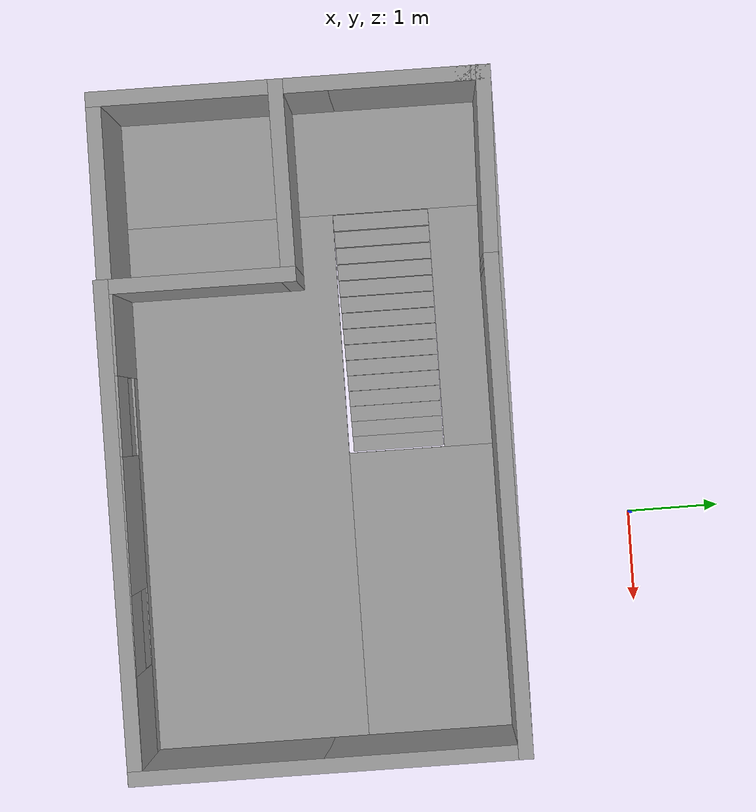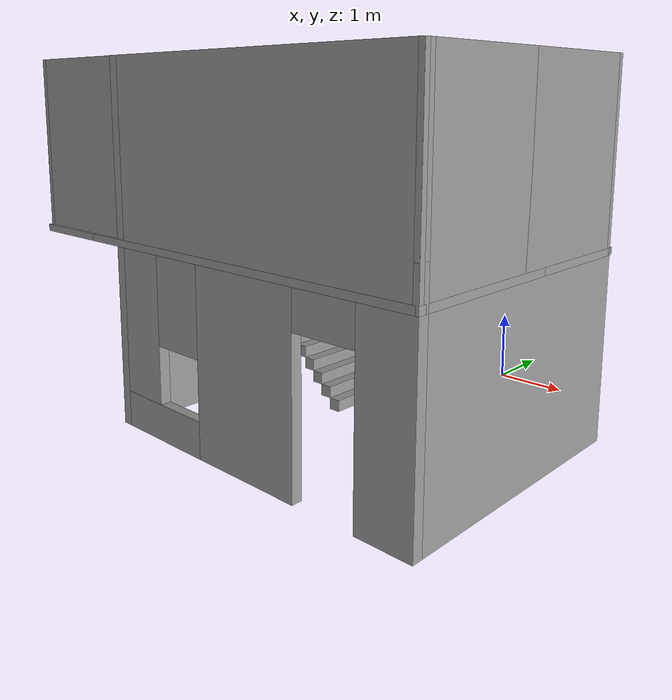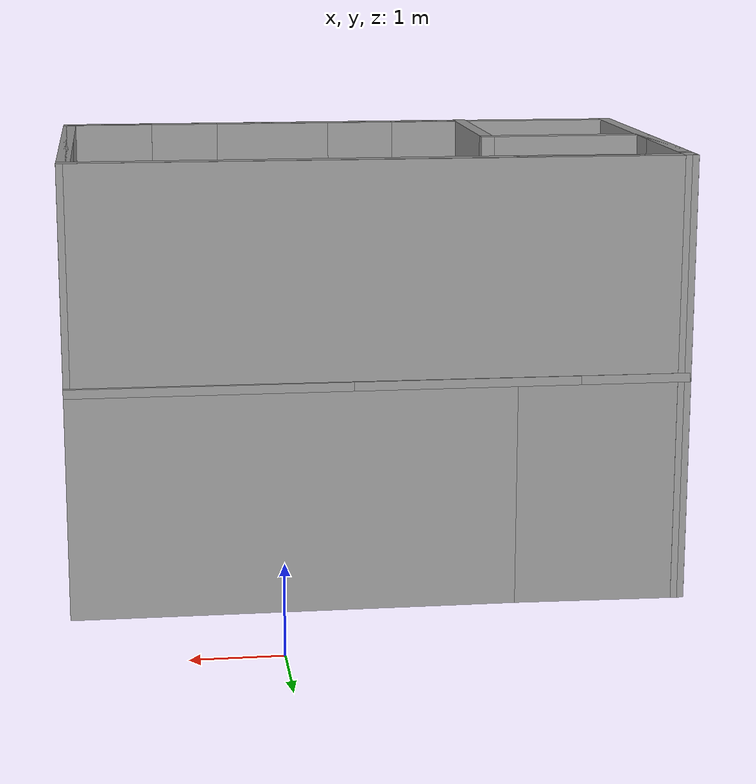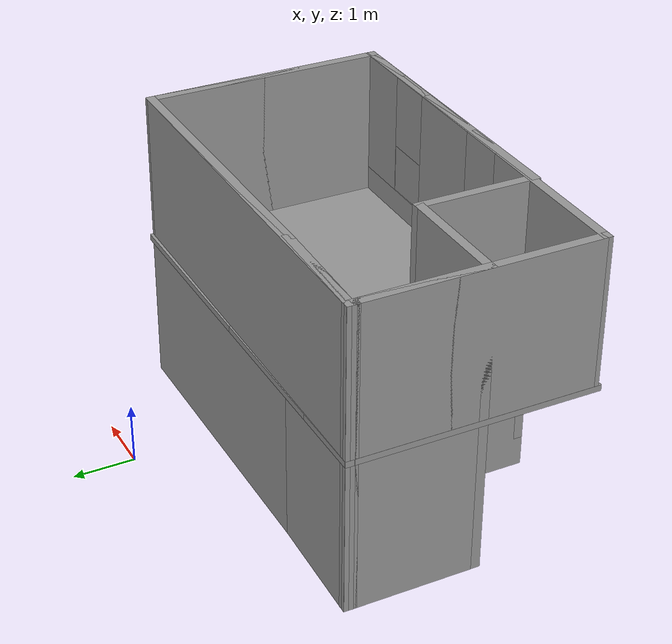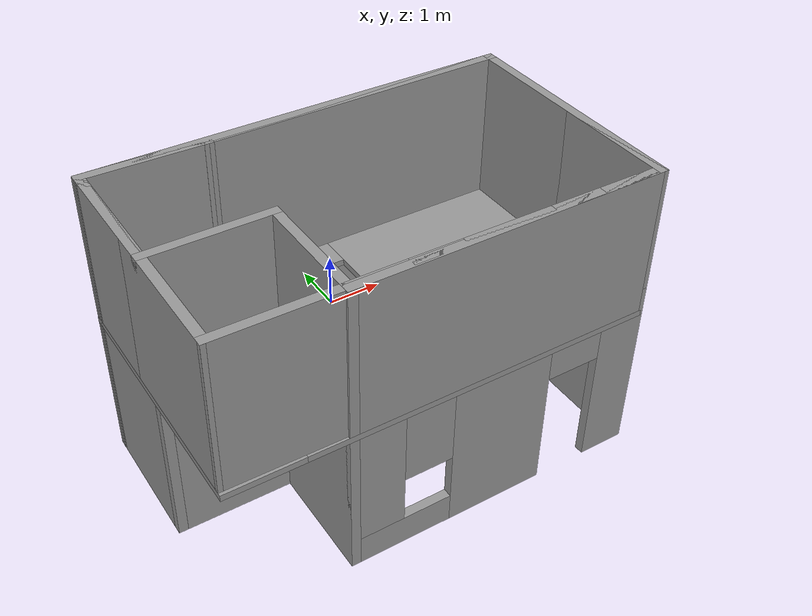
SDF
<?xml version='1.0'?>
<sdf version='1.7'>
  <model name='test_world_2'>
    <pose>-1.19072 -2.67778 0 0 -0 0</pose>
    <link name='Floor_0'>
      <pose>0 -0.6515 2.5 0 -0 0</pose>
      <visual name='Floor_0_Visual_0'>
        <pose>-2.80864 0 0.05 0 -0 0</pose>
        <geometry>
          <box>
            <size>1.23471 4.052 0.1</size>
          </box>
        </geometry>
        <material>
          <script>
            <uri>file://media/materials/scripts/gazebo.material</uri>
            <name>Gazebo/Grey</name>
          </script>
          <ambient>1 1 1 1</ambient>
        </material>
        <meta>
          <layer>1</layer>
        </meta>
      </visual>
      <collision name='Floor_0_Collision_0'>
        <geometry>
          <box>
            <size>1.23471 4.052 0.1</size>
          </box>
        </geometry>
        <pose>-2.80864 0 0.05 0 -0 0</pose>
      </collision>
      <visual name='Floor_0_Visual_1'>
        <pose>0.617357 -0.85257 0.05 0 -0 0</pose>
        <geometry>
          <box>
            <size>5.61728 2.34686 0.1</size>
          </box>
        </geometry>
        <material>
          <script>
            <uri>file://media/materials/scripts/gazebo.material</uri>
            <name>Gazebo/Grey</name>
          </script>
          <ambient>1 1 1 1</ambient>
        </material>
        <meta>
          <layer>1</layer>
        </meta>
      </visual>
      <collision name='Floor_0_Collision_1'>
        <geometry>
          <box>
            <size>5.61728 2.34686 0.1</size>
          </box>
        </geometry>
        <pose>0.617357 -0.85257 0.05 0 -0 0</pose>
      </collision>
      <visual name='Floor_0_Visual_2'>
        <pose>1.87005 1.17343 0.05 0 -0 0</pose>
        <geometry>
          <box>
            <size>3.1119 1.70514 0.1</size>
          </box>
        </geometry>
        <material>
          <script>
            <uri>file://media/materials/scripts/gazebo.material</uri>
            <name>Gazebo/Grey</name>
          </script>
          <ambient>1 1 1 1</ambient>
        </material>
        <meta>
          <layer>1</layer>
        </meta>
      </visual>
      <collision name='Floor_0_Collision_2'>
        <geometry>
          <box>
            <size>3.1119 1.70514 0.1</size>
          </box>
        </geometry>
        <pose>1.87005 1.17343 0.05 0 -0 0</pose>
      </collision>
      <visual name='Floor_0_Visual_3'>
        <pose>-0.938594 1.67343 0.05 0 -0 0</pose>
        <geometry>
          <box>
            <size>2.50538 0.705139 0.1</size>
          </box>
        </geometry>
        <material>
          <script>
            <uri>file://media/materials/scripts/gazebo.material</uri>
            <name>Gazebo/Grey</name>
          </script>
          <ambient>1 1 1 1</ambient>
        </material>
        <meta>
          <layer>1</layer>
        </meta>
      </visual>
      <collision name='Floor_0_Collision_3'>
        <geometry>
          <box>
            <size>2.50538 0.705139 0.1</size>
          </box>
        </geometry>
        <pose>-0.938594 1.67343 0.05 0 -0 0</pose>
      </collision>
    </link>
    <link name='Stairs_0'>
      <visual name='Stairs_0_Visual_0'>
        <pose>0.230585 0.169359 0.083333 0 -0 -1.5708</pose>
        <geometry>
          <box>
            <size>1 0.167026 0.166667</size>
          </box>
        </geometry>
        <material>
          <script>
            <uri>file://media/materials/scripts/gazebo.material</uri>
            <name>Gazebo/Grey</name>
          </script>
          <ambient>1 1 1 1</ambient>
        </material>
        <meta>
          <layer>0</layer>
        </meta>
      </visual>
      <collision name='Stairs_0_Collision_0'>
        <geometry>
          <box>
            <size>1 0.167026 0.166667</size>
          </box>
        </geometry>
        <pose>0.230585 0.169359 0.083333 0 -0 -1.5708</pose>
      </collision>
      <visual name='Stairs_0_Visual_1'>
        <pose>0.06356 0.169359 0.25 0 -0 -1.5708</pose>
        <geometry>
          <box>
            <size>1 0.167026 0.166667</size>
          </box>
        </geometry>
        <material>
          <script>
            <uri>file://media/materials/scripts/gazebo.material</uri>
            <name>Gazebo/Grey</name>
          </script>
          <ambient>1 1 1 1</ambient>
        </material>
        <meta>
          <layer>0</layer>
        </meta>
      </visual>
      <collision name='Stairs_0_Collision_1'>
        <geometry>
          <box>
            <size>1 0.167026 0.166667</size>
          </box>
        </geometry>
        <pose>0.06356 0.169359 0.25 0 -0 -1.5708</pose>
      </collision>
      <visual name='Stairs_0_Visual_2'>
        <pose>-0.103466 0.169359 0.416667 0 -0 -1.5708</pose>
        <geometry>
          <box>
            <size>1 0.167026 0.166667</size>
          </box>
        </geometry>
        <material>
          <script>
            <uri>file://media/materials/scripts/gazebo.material</uri>
            <name>Gazebo/Grey</name>
          </script>
          <ambient>1 1 1 1</ambient>
        </material>
        <meta>
          <layer>0</layer>
        </meta>
      </visual>
      <collision name='Stairs_0_Collision_2'>
        <geometry>
          <box>
            <size>1 0.167026 0.166667</size>
          </box>
        </geometry>
        <pose>-0.103466 0.169359 0.416667 0 -0 -1.5708</pose>
      </collision>
      <visual name='Stairs_0_Visual_3'>
        <pose>-0.270491 0.16936 0.583333 0 -0 -1.5708</pose>
        <geometry>
          <box>
            <size>1 0.167026 0.166667</size>
          </box>
        </geometry>
        <material>
          <script>
            <uri>file://media/materials/scripts/gazebo.material</uri>
            <name>Gazebo/Grey</name>
          </script>
          <ambient>1 1 1 1</ambient>
        </material>
        <meta>
          <layer>0</layer>
        </meta>
      </visual>
      <collision name='Stairs_0_Collision_3'>
        <geometry>
          <box>
            <size>1 0.167026 0.166667</size>
          </box>
        </geometry>
        <pose>-0.270491 0.16936 0.583333 0 -0 -1.5708</pose>
      </collision>
      <visual name='Stairs_0_Visual_4'>
        <pose>-0.437517 0.16936 0.75 0 -0 -1.5708</pose>
        <geometry>
          <box>
            <size>1 0.167026 0.166667</size>
          </box>
        </geometry>
        <material>
          <script>
            <uri>file://media/materials/scripts/gazebo.material</uri>
            <name>Gazebo/Grey</name>
          </script>
          <ambient>1 1 1 1</ambient>
        </material>
        <meta>
          <layer>0</layer>
        </meta>
      </visual>
      <collision name='Stairs_0_Collision_4'>
        <geometry>
          <box>
            <size>1 0.167026 0.166667</size>
          </box>
        </geometry>
        <pose>-0.437517 0.16936 0.75 0 -0 -1.5708</pose>
      </collision>
      <visual name='Stairs_0_Visual_5'>
        <pose>-0.604543 0.16936 0.916667 0 -0 -1.5708</pose>
        <geometry>
          <box>
            <size>1 0.167026 0.166667</size>
          </box>
        </geometry>
        <material>
          <script>
            <uri>file://media/materials/scripts/gazebo.material</uri>
            <name>Gazebo/Grey</name>
          </script>
          <ambient>1 1 1 1</ambient>
        </material>
        <meta>
          <layer>0</layer>
        </meta>
      </visual>
      <collision name='Stairs_0_Collision_5'>
        <geometry>
          <box>
            <size>1 0.167026 0.166667</size>
          </box>
        </geometry>
        <pose>-0.604543 0.16936 0.916667 0 -0 -1.5708</pose>
      </collision>
      <visual name='Stairs_0_Visual_6'>
        <pose>-0.771568 0.16936 1.08333 0 -0 -1.5708</pose>
        <geometry>
          <box>
            <size>1 0.167026 0.166667</size>
          </box>
        </geometry>
        <material>
          <script>
            <uri>file://media/materials/scripts/gazebo.material</uri>
            <name>Gazebo/Grey</name>
          </script>
          <ambient>1 1 1 1</ambient>
        </material>
        <meta>
          <layer>0</layer>
        </meta>
      </visual>
      <collision name='Stairs_0_Collision_6'>
        <geometry>
          <box>
            <size>1 0.167026 0.166667</size>
          </box>
        </geometry>
        <pose>-0.771568 0.16936 1.08333 0 -0 -1.5708</pose>
      </collision>
      <visual name='Stairs_0_Visual_7'>
        <pose>-0.938594 0.16936 1.25 0 -0 -1.5708</pose>
        <geometry>
          <box>
            <size>1 0.167026 0.166667</size>
          </box>
        </geometry>
        <material>
          <script>
            <uri>file://media/materials/scripts/gazebo.material</uri>
            <name>Gazebo/Grey</name>
          </script>
          <ambient>1 1 1 1</ambient>
        </material>
        <meta>
          <layer>0</layer>
        </meta>
      </visual>
      <collision name='Stairs_0_Collision_7'>
        <geometry>
          <box>
            <size>1 0.167026 0.166667</size>
          </box>
        </geometry>
        <pose>-0.938594 0.16936 1.25 0 -0 -1.5708</pose>
      </collision>
      <visual name='Stairs_0_Visual_8'>
        <pose>-1.10562 0.16936 1.41667 0 -0 -1.5708</pose>
        <geometry>
          <box>
            <size>1 0.167026 0.166667</size>
          </box>
        </geometry>
        <material>
          <script>
            <uri>file://media/materials/scripts/gazebo.material</uri>
            <name>Gazebo/Grey</name>
          </script>
          <ambient>1 1 1 1</ambient>
        </material>
        <meta>
          <layer>0</layer>
        </meta>
      </visual>
      <collision name='Stairs_0_Collision_8'>
        <geometry>
          <box>
            <size>1 0.167026 0.166667</size>
          </box>
        </geometry>
        <pose>-1.10562 0.16936 1.41667 0 -0 -1.5708</pose>
      </collision>
      <visual name='Stairs_0_Visual_9'>
        <pose>-1.27265 0.16936 1.58333 0 -0 -1.5708</pose>
        <geometry>
          <box>
            <size>1 0.167026 0.166667</size>
          </box>
        </geometry>
        <material>
          <script>
            <uri>file://media/materials/scripts/gazebo.material</uri>
            <name>Gazebo/Grey</name>
          </script>
          <ambient>1 1 1 1</ambient>
        </material>
        <meta>
          <layer>0</layer>
        </meta>
      </visual>
      <collision name='Stairs_0_Collision_9'>
        <geometry>
          <box>
            <size>1 0.167026 0.166667</size>
          </box>
        </geometry>
        <pose>-1.27265 0.16936 1.58333 0 -0 -1.5708</pose>
      </collision>
      <visual name='Stairs_0_Visual_10'>
        <pose>-1.43967 0.16936 1.75 0 -0 -1.5708</pose>
        <geometry>
          <box>
            <size>1 0.167026 0.166667</size>
          </box>
        </geometry>
        <material>
          <script>
            <uri>file://media/materials/scripts/gazebo.material</uri>
            <name>Gazebo/Grey</name>
          </script>
          <ambient>1 1 1 1</ambient>
        </material>
        <meta>
          <layer>0</layer>
        </meta>
      </visual>
      <collision name='Stairs_0_Collision_10'>
        <geometry>
          <box>
            <size>1 0.167026 0.166667</size>
          </box>
        </geometry>
        <pose>-1.43967 0.16936 1.75 0 -0 -1.5708</pose>
      </collision>
      <visual name='Stairs_0_Visual_11'>
        <pose>-1.6067 0.16936 1.91667 0 -0 -1.5708</pose>
        <geometry>
          <box>
            <size>1 0.167026 0.166667</size>
          </box>
        </geometry>
        <material>
          <script>
            <uri>file://media/materials/scripts/gazebo.material</uri>
            <name>Gazebo/Grey</name>
          </script>
          <ambient>1 1 1 1</ambient>
        </material>
        <meta>
          <layer>0</layer>
        </meta>
      </visual>
      <collision name='Stairs_0_Collision_11'>
        <geometry>
          <box>
            <size>1 0.167026 0.166667</size>
          </box>
        </geometry>
        <pose>-1.6067 0.16936 1.91667 0 -0 -1.5708</pose>
      </collision>
      <visual name='Stairs_0_Visual_12'>
        <pose>-1.77372 0.16936 2.08333 0 -0 -1.5708</pose>
        <geometry>
          <box>
            <size>1 0.167026 0.166667</size>
          </box>
        </geometry>
        <material>
          <script>
            <uri>file://media/materials/scripts/gazebo.material</uri>
            <name>Gazebo/Grey</name>
          </script>
          <ambient>1 1 1 1</ambient>
        </material>
        <meta>
          <layer>0</layer>
        </meta>
      </visual>
      <collision name='Stairs_0_Collision_12'>
        <geometry>
          <box>
            <size>1 0.167026 0.166667</size>
          </box>
        </geometry>
        <pose>-1.77372 0.16936 2.08333 0 -0 -1.5708</pose>
      </collision>
      <visual name='Stairs_0_Visual_13'>
        <pose>-1.94075 0.16936 2.25 0 -0 -1.5708</pose>
        <geometry>
          <box>
            <size>1 0.167026 0.166667</size>
          </box>
        </geometry>
        <material>
          <script>
            <uri>file://media/materials/scripts/gazebo.material</uri>
            <name>Gazebo/Grey</name>
          </script>
          <ambient>1 1 1 1</ambient>
        </material>
        <meta>
          <layer>0</layer>
        </meta>
      </visual>
      <collision name='Stairs_0_Collision_13'>
        <geometry>
          <box>
            <size>1 0.167026 0.166667</size>
          </box>
        </geometry>
        <pose>-1.94075 0.16936 2.25 0 -0 -1.5708</pose>
      </collision>
      <visual name='Stairs_0_Visual_14'>
        <pose>-2.10777 0.16936 2.41667 0 -0 -1.5708</pose>
        <geometry>
          <box>
            <size>1 0.167026 0.166667</size>
          </box>
        </geometry>
        <material>
          <script>
            <uri>file://media/materials/scripts/gazebo.material</uri>
            <name>Gazebo/Grey</name>
          </script>
          <ambient>1 1 1 1</ambient>
        </material>
        <meta>
          <layer>0</layer>
        </meta>
      </visual>
      <collision name='Stairs_0_Collision_14'>
        <geometry>
          <box>
            <size>1 0.167026 0.166667</size>
          </box>
        </geometry>
        <pose>-2.10777 0.16936 2.41667 0 -0 -1.5708</pose>
      </collision>
    </link>
    <link name='Wall_0'>
      <collision name='Wall_0_Collision'>
        <geometry>
          <box>
            <size>5 0.15 2.5</size>
          </box>
        </geometry>
        <pose>0 0 1.25 0 -0 0</pose>
      </collision>
      <visual name='Wall_0_Visual'>
        <pose>0 0 1.25 0 -0 0</pose>
        <geometry>
          <box>
            <size>5 0.15 2.5</size>
          </box>
        </geometry>
        <material>
          <script>
            <uri>file://media/materials/scripts/gazebo.material</uri>
            <name>Gazebo/Grey</name>
          </script>
          <ambient>1 1 1 1</ambient>
        </material>
        <meta>
          <layer>0</layer>
        </meta>
      </visual>
      <pose>0.925721 1.24778 0 0 -0 0</pose>
    </link>
    <link name='Wall_1'>
      <collision name='Wall_1_Collision'>
        <geometry>
          <box>
            <size>4 0.15 2.5</size>
          </box>
        </geometry>
        <pose>0 0 1.25 0 -0 0</pose>
      </collision>
      <visual name='Wall_1_Visual'>
        <pose>0 0 1.25 0 -0 0</pose>
        <geometry>
          <box>
            <size>4 0.15 2.5</size>
          </box>
        </geometry>
        <material>
          <script>
            <uri>file://media/materials/scripts/gazebo.material</uri>
            <name>Gazebo/Grey</name>
          </script>
          <ambient>1 1 1 1</ambient>
        </material>
        <meta>
          <layer>0</layer>
        </meta>
      </visual>
      <pose>3.35072 -0.677221 0 0 -0 -1.5708</pose>
    </link>
    <link name='Wall_10'>
      <collision name='Wall_10_Collision'>
        <geometry>
          <box>
            <size>2.00068 0.15 2.5</size>
          </box>
        </geometry>
        <pose>0 0 1.25 0 -0 0</pose>
      </collision>
      <visual name='Wall_10_Visual'>
        <pose>0 0 1.25 0 -0 0</pose>
        <geometry>
          <box>
            <size>2.00068 0.15 2.5</size>
          </box>
        </geometry>
        <material>
          <script>
            <uri>file://media/materials/scripts/gazebo.material</uri>
            <name>Gazebo/Grey</name>
          </script>
          <ambient>1 1 1 1</ambient>
        </material>
        <meta>
          <layer>0</layer>
        </meta>
      </visual>
      <pose>-2.42428 1.27278 0 0 -0 -0.02702</pose>
    </link>
    <link name='Wall_12'>
      <collision name='Wall_12_Collision'>
        <geometry>
          <box>
            <size>5 0.15 2.5</size>
          </box>
        </geometry>
        <pose>0 0 1.25 0 -0 0</pose>
      </collision>
      <visual name='Wall_12_Visual'>
        <pose>0 0 1.25 0 -0 0</pose>
        <geometry>
          <box>
            <size>5 0.15 2.5</size>
          </box>
        </geometry>
        <material>
          <script>
            <uri>file://media/materials/scripts/gazebo.material</uri>
            <name>Gazebo/Grey</name>
          </script>
          <ambient>1 1 1 1</ambient>
        </material>
        <meta>
          <layer>1</layer>
        </meta>
      </visual>
      <pose>0.925721 1.24778 2.5 0 -0 0</pose>
    </link>
    <link name='Wall_13'>
      <collision name='Wall_13_Collision'>
        <geometry>
          <box>
            <size>4 0.15 2.5</size>
          </box>
        </geometry>
        <pose>0 0 1.25 0 -0 0</pose>
      </collision>
      <visual name='Wall_13_Visual'>
        <pose>0 0 1.25 0 -0 0</pose>
        <geometry>
          <box>
            <size>4 0.15 2.5</size>
          </box>
        </geometry>
        <material>
          <script>
            <uri>file://media/materials/scripts/gazebo.material</uri>
            <name>Gazebo/Grey</name>
          </script>
          <ambient>1 1 1 1</ambient>
        </material>
        <meta>
          <layer>1</layer>
        </meta>
      </visual>
      <pose>3.35072 -0.677221 2.5 0 -0 -1.5708</pose>
    </link>
    <link name='Wall_14'>
      <collision name='Wall_14_Collision'>
        <geometry>
          <box>
            <size>5 0.15 2.5</size>
          </box>
        </geometry>
        <pose>0 0 1.25 0 -0 0</pose>
      </collision>
      <visual name='Wall_14_Visual'>
        <pose>0 0 1.25 0 -0 0</pose>
        <geometry>
          <box>
            <size>5 0.15 2.5</size>
          </box>
        </geometry>
        <material>
          <script>
            <uri>file://media/materials/scripts/gazebo.material</uri>
            <name>Gazebo/Grey</name>
          </script>
          <ambient>1 1 1 1</ambient>
        </material>
        <meta>
          <layer>1</layer>
        </meta>
      </visual>
      <pose>0.925721 -2.60222 2.5 0 -0 3.14159</pose>
    </link>
    <link name='Wall_15'>
      <collision name='Wall_15_Collision'>
        <geometry>
          <box>
            <size>2 0.15 2.5</size>
          </box>
        </geometry>
        <pose>0 0 1.25 0 -0 0</pose>
      </collision>
      <visual name='Wall_15_Visual'>
        <pose>0 0 1.25 0 -0 0</pose>
        <geometry>
          <box>
            <size>2 0.15 2.5</size>
          </box>
        </geometry>
        <material>
          <script>
            <uri>file://media/materials/scripts/gazebo.material</uri>
            <name>Gazebo/Grey</name>
          </script>
          <ambient>1 1 1 1</ambient>
        </material>
        <meta>
          <layer>1</layer>
        </meta>
      </visual>
      <pose>-1.49928 -1.67722 2.5 0 -0 1.5708</pose>
    </link>
    <link name='Wall_16'>
      <collision name='Wall_16_Collision'>
        <geometry>
          <box>
            <size>2 0.15 2.5</size>
          </box>
        </geometry>
        <pose>0 0 1.25 0 -0 0</pose>
      </collision>
      <visual name='Wall_16_Visual'>
        <pose>0 0 1.25 0 -0 0</pose>
        <geometry>
          <box>
            <size>2 0.15 2.5</size>
          </box>
        </geometry>
        <material>
          <script>
            <uri>file://media/materials/scripts/gazebo.material</uri>
            <name>Gazebo/Grey</name>
          </script>
          <ambient>1 1 1 1</ambient>
        </material>
        <meta>
          <layer>1</layer>
        </meta>
      </visual>
      <pose>-2.42428 -0.752221 2.5 0 -0 3.14159</pose>
    </link>
    <link name='Wall_17'>
      <collision name='Wall_17_Collision'>
        <geometry>
          <box>
            <size>2 0.15 2.5</size>
          </box>
        </geometry>
        <pose>0 0 1.25 0 -0 0</pose>
      </collision>
      <visual name='Wall_17_Visual'>
        <pose>0 0 1.25 0 -0 0</pose>
        <geometry>
          <box>
            <size>2 0.15 2.5</size>
          </box>
        </geometry>
        <material>
          <script>
            <uri>file://media/materials/scripts/gazebo.material</uri>
            <name>Gazebo/Grey</name>
          </script>
          <ambient>1 1 1 1</ambient>
        </material>
        <meta>
          <layer>1</layer>
        </meta>
      </visual>
      <pose>-3.34928 0.172779 2.5 0 -0 1.5708</pose>
    </link>
    <link name='Wall_18'>
      <collision name='Wall_18_Collision'>
        <geometry>
          <box>
            <size>0.25 0.15 2.5</size>
          </box>
        </geometry>
        <pose>0 0 1.25 0 -0 0</pose>
      </collision>
      <visual name='Wall_18_Visual'>
        <pose>0 0 1.25 0 -0 0</pose>
        <geometry>
          <box>
            <size>0.25 0.15 2.5</size>
          </box>
        </geometry>
        <material>
          <script>
            <uri>file://media/materials/scripts/gazebo.material</uri>
            <name>Gazebo/Grey</name>
          </script>
          <ambient>1 1 1 1</ambient>
        </material>
        <meta>
          <layer>1</layer>
        </meta>
      </visual>
      <pose>-3.34928 1.14778 2.5 0 -0 1.5708</pose>
    </link>
    <link name='Wall_19'>
      <collision name='Wall_19_Collision'>
        <geometry>
          <box>
            <size>0.25 0.15 2.5</size>
          </box>
        </geometry>
        <pose>0 0 1.25 0 -0 0</pose>
      </collision>
      <visual name='Wall_19_Visual'>
        <pose>0 0 1.25 0 -0 0</pose>
        <geometry>
          <box>
            <size>0.25 0.15 2.5</size>
          </box>
        </geometry>
        <material>
          <script>
            <uri>file://media/materials/scripts/gazebo.material</uri>
            <name>Gazebo/Grey</name>
          </script>
          <ambient>1 1 1 1</ambient>
        </material>
        <meta>
          <layer>1</layer>
        </meta>
      </visual>
      <pose>-3.34928 1.14778 2.5 0 -0 -1.5708</pose>
    </link>
    <link name='Wall_2'>
      <pose>0.925721 -2.60222 0 0 -0 3.14159</pose>
      <visual name='Wall_2_Visual_0'>
        <pose>-2.11415 0 1.25 0 -0 0</pose>
        <geometry>
          <box>
            <size>0.7717 0.15 2.5</size>
          </box>
        </geometry>
        <material>
          <script>
            <uri>file://media/materials/scripts/gazebo.material</uri>
            <name>Gazebo/Grey</name>
          </script>
          <ambient>1 1 1 1</ambient>
        </material>
        <meta>
          <layer>0</layer>
        </meta>
      </visual>
      <collision name='Wall_2_Collision_0'>
        <geometry>
          <box>
            <size>0.7717 0.15 2.5</size>
          </box>
        </geometry>
        <pose>-2.11415 0 1.25 0 -0 0</pose>
      </collision>
      <visual name='Wall_2_Visual_1'>
        <pose>-0.003537 0 1.25 0 -0 0</pose>
        <geometry>
          <box>
            <size>1.64952 0.15 2.5</size>
          </box>
        </geometry>
        <material>
          <script>
            <uri>file://media/materials/scripts/gazebo.material</uri>
            <name>Gazebo/Grey</name>
          </script>
          <ambient>1 1 1 1</ambient>
        </material>
        <meta>
          <layer>0</layer>
        </meta>
      </visual>
      <collision name='Wall_2_Collision_1'>
        <geometry>
          <box>
            <size>1.64952 0.15 2.5</size>
          </box>
        </geometry>
        <pose>-0.003537 0 1.25 0 -0 0</pose>
      </collision>
      <visual name='Wall_2_Visual_2'>
        <pose>1.66061 0 0.25 0 -0 0</pose>
        <geometry>
          <box>
            <size>1.67877 0.15 0.5</size>
          </box>
        </geometry>
        <material>
          <script>
            <uri>file://media/materials/scripts/gazebo.material</uri>
            <name>Gazebo/Grey</name>
          </script>
          <ambient>1 1 1 1</ambient>
        </material>
        <meta>
          <layer>0</layer>
        </meta>
      </visual>
      <collision name='Wall_2_Collision_2'>
        <geometry>
          <box>
            <size>1.67877 0.15 0.5</size>
          </box>
        </geometry>
        <pose>1.66061 0 0.25 0 -0 0</pose>
      </collision>
      <visual name='Wall_2_Visual_3'>
        <pose>2.06061 0 1.5 0 -0 0</pose>
        <geometry>
          <box>
            <size>0.878775 0.15 2</size>
          </box>
        </geometry>
        <material>
          <script>
            <uri>file://media/materials/scripts/gazebo.material</uri>
            <name>Gazebo/Grey</name>
          </script>
          <ambient>1 1 1 1</ambient>
        </material>
        <meta>
          <layer>0</layer>
        </meta>
      </visual>
      <collision name='Wall_2_Collision_3'>
        <geometry>
          <box>
            <size>0.878775 0.15 2</size>
          </box>
        </geometry>
        <pose>2.06061 0 1.5 0 -0 0</pose>
      </collision>
      <visual name='Wall_2_Visual_4'>
        <pose>1.22123 0 1.9 0 -0 0</pose>
        <geometry>
          <box>
            <size>0.8 0.15 1.2</size>
          </box>
        </geometry>
        <material>
          <script>
            <uri>file://media/materials/scripts/gazebo.material</uri>
            <name>Gazebo/Grey</name>
          </script>
          <ambient>1 1 1 1</ambient>
        </material>
        <meta>
          <layer>0</layer>
        </meta>
      </visual>
      <collision name='Wall_2_Collision_4'>
        <geometry>
          <box>
            <size>0.8 0.15 1.2</size>
          </box>
        </geometry>
        <pose>1.22123 0 1.9 0 -0 0</pose>
      </collision>
      <visual name='Wall_2_Visual_5'>
        <pose>-1.2783 0 2.25 0 -0 0</pose>
        <geometry>
          <box>
            <size>0.9 0.15 0.5</size>
          </box>
        </geometry>
        <material>
          <script>
            <uri>file://media/materials/scripts/gazebo.material</uri>
            <name>Gazebo/Grey</name>
          </script>
          <ambient>1 1 1 1</ambient>
        </material>
        <meta>
          <layer>0</layer>
        </meta>
      </visual>
      <collision name='Wall_2_Collision_5'>
        <geometry>
          <box>
            <size>0.9 0.15 0.5</size>
          </box>
        </geometry>
        <pose>-1.2783 0 2.25 0 -0 0</pose>
      </collision>
    </link>
    <link name='Wall_20'>
      <collision name='Wall_20_Collision'>
        <geometry>
          <box>
            <size>0.25 0.15 2.5</size>
          </box>
        </geometry>
        <pose>0 0 1.25 0 -0 0</pose>
      </collision>
      <visual name='Wall_20_Visual'>
        <pose>0 0 1.25 0 -0 0</pose>
        <geometry>
          <box>
            <size>0.25 0.15 2.5</size>
          </box>
        </geometry>
        <material>
          <script>
            <uri>file://media/materials/scripts/gazebo.material</uri>
            <name>Gazebo/Grey</name>
          </script>
          <ambient>1 1 1 1</ambient>
        </material>
        <meta>
          <layer>1</layer>
        </meta>
      </visual>
      <pose>-3.34928 1.14778 2.5 0 -0 1.5708</pose>
    </link>
    <link name='Wall_21'>
      <collision name='Wall_21_Collision'>
        <geometry>
          <box>
            <size>0.25 0.15 2.5</size>
          </box>
        </geometry>
        <pose>0 0 1.25 0 -0 0</pose>
      </collision>
      <visual name='Wall_21_Visual'>
        <pose>0 0 1.25 0 -0 0</pose>
        <geometry>
          <box>
            <size>0.25 0.15 2.5</size>
          </box>
        </geometry>
        <material>
          <script>
            <uri>file://media/materials/scripts/gazebo.material</uri>
            <name>Gazebo/Grey</name>
          </script>
          <ambient>1 1 1 1</ambient>
        </material>
        <meta>
          <layer>1</layer>
        </meta>
      </visual>
      <pose>-3.34928 1.24778 2.5 0 -0 1.5708</pose>
    </link>
    <link name='Wall_22'>
      <collision name='Wall_22_Collision'>
        <geometry>
          <box>
            <size>2.00068 0.15 2.5</size>
          </box>
        </geometry>
        <pose>0 0 1.25 0 -0 0</pose>
      </collision>
      <visual name='Wall_22_Visual'>
        <pose>0 0 1.25 0 -0 0</pose>
        <geometry>
          <box>
            <size>2.00068 0.15 2.5</size>
          </box>
        </geometry>
        <material>
          <script>
            <uri>file://media/materials/scripts/gazebo.material</uri>
            <name>Gazebo/Grey</name>
          </script>
          <ambient>1 1 1 1</ambient>
        </material>
        <meta>
          <layer>1</layer>
        </meta>
      </visual>
      <pose>-2.42428 1.27278 2.5 0 -0 -0.02702</pose>
    </link>
    <link name='Wall_23'>
      <collision name='Wall_23_Collision'>
        <geometry>
          <box>
            <size>4 0.15 2.5</size>
          </box>
        </geometry>
        <pose>0 0 1.25 0 -0 0</pose>
      </collision>
      <visual name='Wall_23_Visual'>
        <pose>0 0 1.25 0 -0 0</pose>
        <geometry>
          <box>
            <size>4 0.15 2.5</size>
          </box>
        </geometry>
        <material>
          <script>
            <uri>file://media/materials/scripts/gazebo.material</uri>
            <name>Gazebo/Grey</name>
          </script>
          <ambient>1 1 1 1</ambient>
        </material>
        <meta>
          <layer>1</layer>
        </meta>
      </visual>
      <pose>-3.34928 -0.627221 2.5 0 -0 -1.5708</pose>
    </link>
    <link name='Wall_24'>
      <pose>0.000721 -2.57722 2.5 0 -0 -0.007463</pose>
      <visual name='Wall_24_Visual_0'>
        <pose>-2.02327 0 1.25 0 -0 0</pose>
        <geometry>
          <box>
            <size>2.80366 0.15 2.5</size>
          </box>
        </geometry>
        <material>
          <script>
            <uri>file://media/materials/scripts/gazebo.material</uri>
            <name>Gazebo/Grey</name>
          </script>
          <ambient>1 1 1 1</ambient>
        </material>
        <meta>
          <layer>1</layer>
        </meta>
      </visual>
      <collision name='Wall_24_Collision_0'>
        <geometry>
          <box>
            <size>2.80366 0.15 2.5</size>
          </box>
        </geometry>
        <pose>-2.02327 0 1.25 0 -0 0</pose>
      </collision>
      <visual name='Wall_24_Visual_1'>
        <pose>1.40183 0 0.25 0 -0 0</pose>
        <geometry>
          <box>
            <size>4.04653 0.15 0.5</size>
          </box>
        </geometry>
        <material>
          <script>
            <uri>file://media/materials/scripts/gazebo.material</uri>
            <name>Gazebo/Grey</name>
          </script>
          <ambient>1 1 1 1</ambient>
        </material>
        <meta>
          <layer>1</layer>
        </meta>
      </visual>
      <collision name='Wall_24_Collision_1'>
        <geometry>
          <box>
            <size>4.04653 0.15 0.5</size>
          </box>
        </geometry>
        <pose>1.40183 0 0.25 0 -0 0</pose>
      </collision>
      <visual name='Wall_24_Visual_2'>
        <pose>0.865411 0 1.5 0 -0 0</pose>
        <geometry>
          <box>
            <size>1.3737 0.15 2</size>
          </box>
        </geometry>
        <material>
          <script>
            <uri>file://media/materials/scripts/gazebo.material</uri>
            <name>Gazebo/Grey</name>
          </script>
          <ambient>1 1 1 1</ambient>
        </material>
        <meta>
          <layer>1</layer>
        </meta>
      </visual>
      <collision name='Wall_24_Collision_2'>
        <geometry>
          <box>
            <size>1.3737 0.15 2</size>
          </box>
        </geometry>
        <pose>0.865411 0 1.5 0 -0 0</pose>
      </collision>
      <visual name='Wall_24_Visual_3'>
        <pose>2.88868 0 1.5 0 -0 0</pose>
        <geometry>
          <box>
            <size>1.07283 0.15 2</size>
          </box>
        </geometry>
        <material>
          <script>
            <uri>file://media/materials/scripts/gazebo.material</uri>
            <name>Gazebo/Grey</name>
          </script>
          <ambient>1 1 1 1</ambient>
        </material>
        <meta>
          <layer>1</layer>
        </meta>
      </visual>
      <collision name='Wall_24_Collision_3'>
        <geometry>
          <box>
            <size>1.07283 0.15 2</size>
          </box>
        </geometry>
        <pose>2.88868 0 1.5 0 -0 0</pose>
      </collision>
      <visual name='Wall_24_Visual_4'>
        <pose>-0.221438 0 1.9 0 -0 0</pose>
        <geometry>
          <box>
            <size>0.8 0.15 1.2</size>
          </box>
        </geometry>
        <material>
          <script>
            <uri>file://media/materials/scripts/gazebo.material</uri>
            <name>Gazebo/Grey</name>
          </script>
          <ambient>1 1 1 1</ambient>
        </material>
        <meta>
          <layer>1</layer>
        </meta>
      </visual>
      <collision name='Wall_24_Collision_4'>
        <geometry>
          <box>
            <size>0.8 0.15 1.2</size>
          </box>
        </geometry>
        <pose>-0.221438 0 1.9 0 -0 0</pose>
      </collision>
      <visual name='Wall_24_Visual_5'>
        <pose>1.95226 0 1.9 0 -0 0</pose>
        <geometry>
          <box>
            <size>0.8 0.15 1.2</size>
          </box>
        </geometry>
        <material>
          <script>
            <uri>file://media/materials/scripts/gazebo.material</uri>
            <name>Gazebo/Grey</name>
          </script>
          <ambient>1 1 1 1</ambient>
        </material>
        <meta>
          <layer>1</layer>
        </meta>
      </visual>
      <collision name='Wall_24_Collision_5'>
        <geometry>
          <box>
            <size>0.8 0.15 1.2</size>
          </box>
        </geometry>
        <pose>1.95226 0 1.9 0 -0 0</pose>
      </collision>
    </link>
    <link name='Wall_25'>
      <collision name='Wall_25_Collision'>
        <geometry>
          <box>
            <size>4 0.15 2.5</size>
          </box>
        </geometry>
        <pose>0 0 1.25 0 -0 0</pose>
      </collision>
      <visual name='Wall_25_Visual'>
        <pose>0 0 1.25 0 -0 0</pose>
        <geometry>
          <box>
            <size>4 0.15 2.5</size>
          </box>
        </geometry>
        <material>
          <script>
            <uri>file://media/materials/scripts/gazebo.material</uri>
            <name>Gazebo/Grey</name>
          </script>
          <ambient>1 1 1 1</ambient>
        </material>
        <meta>
          <layer>1</layer>
        </meta>
      </visual>
      <pose>3.35072 -0.677221 2.5 0 -0 1.5708</pose>
    </link>
    <link name='Wall_26'>
      <collision name='Wall_26_Collision'>
        <geometry>
          <box>
            <size>6.85019 0.15 2.5</size>
          </box>
        </geometry>
        <pose>0 0 1.25 0 -0 0</pose>
      </collision>
      <visual name='Wall_26_Visual'>
        <pose>0 0 1.25 0 -0 0</pose>
        <geometry>
          <box>
            <size>6.85019 0.15 2.5</size>
          </box>
        </geometry>
        <material>
          <script>
            <uri>file://media/materials/scripts/gazebo.material</uri>
            <name>Gazebo/Grey</name>
          </script>
          <ambient>1 1 1 1</ambient>
        </material>
        <meta>
          <layer>1</layer>
        </meta>
      </visual>
      <pose>0.000721 1.27278 2.5 0 -0 3.13413</pose>
    </link>
    <link name='Wall_3'>
      <collision name='Wall_3_Collision'>
        <geometry>
          <box>
            <size>2 0.15 2.5</size>
          </box>
        </geometry>
        <pose>0 0 1.25 0 -0 0</pose>
      </collision>
      <visual name='Wall_3_Visual'>
        <pose>0 0 1.25 0 -0 0</pose>
        <geometry>
          <box>
            <size>2 0.15 2.5</size>
          </box>
        </geometry>
        <material>
          <script>
            <uri>file://media/materials/scripts/gazebo.material</uri>
            <name>Gazebo/Grey</name>
          </script>
          <ambient>1 1 1 1</ambient>
        </material>
        <meta>
          <layer>0</layer>
        </meta>
      </visual>
      <pose>-1.49928 -1.67722 0 0 -0 1.5708</pose>
    </link>
    <link name='Wall_4'>
      <collision name='Wall_4_Collision'>
        <geometry>
          <box>
            <size>2 0.15 2.5</size>
          </box>
        </geometry>
        <pose>0 0 1.25 0 -0 0</pose>
      </collision>
      <visual name='Wall_4_Visual'>
        <pose>0 0 1.25 0 -0 0</pose>
        <geometry>
          <box>
            <size>2 0.15 2.5</size>
          </box>
        </geometry>
        <material>
          <script>
            <uri>file://media/materials/scripts/gazebo.material</uri>
            <name>Gazebo/Grey</name>
          </script>
          <ambient>1 1 1 1</ambient>
        </material>
        <meta>
          <layer>0</layer>
        </meta>
      </visual>
      <pose>-2.42428 -0.752221 0 0 -0 3.14159</pose>
    </link>
    <link name='Wall_5'>
      <collision name='Wall_5_Collision'>
        <geometry>
          <box>
            <size>2 0.15 2.5</size>
          </box>
        </geometry>
        <pose>0 0 1.25 0 -0 0</pose>
      </collision>
      <visual name='Wall_5_Visual'>
        <pose>0 0 1.25 0 -0 0</pose>
        <geometry>
          <box>
            <size>2 0.15 2.5</size>
          </box>
        </geometry>
        <material>
          <script>
            <uri>file://media/materials/scripts/gazebo.material</uri>
            <name>Gazebo/Grey</name>
          </script>
          <ambient>1 1 1 1</ambient>
        </material>
        <meta>
          <layer>0</layer>
        </meta>
      </visual>
      <pose>-3.34928 0.172779 0 0 -0 1.5708</pose>
    </link>
    <link name='Wall_6'>
      <collision name='Wall_6_Collision'>
        <geometry>
          <box>
            <size>0.25 0.15 2.5</size>
          </box>
        </geometry>
        <pose>0 0 1.25 0 -0 0</pose>
      </collision>
      <visual name='Wall_6_Visual'>
        <pose>0 0 1.25 0 -0 0</pose>
        <geometry>
          <box>
            <size>0.25 0.15 2.5</size>
          </box>
        </geometry>
        <material>
          <script>
            <uri>file://media/materials/scripts/gazebo.material</uri>
            <name>Gazebo/Grey</name>
          </script>
          <ambient>1 1 1 1</ambient>
        </material>
        <meta>
          <layer>0</layer>
        </meta>
      </visual>
      <pose>-3.34928 1.14778 0 0 -0 1.5708</pose>
    </link>
    <link name='Wall_7'>
      <collision name='Wall_7_Collision'>
        <geometry>
          <box>
            <size>0.25 0.15 2.5</size>
          </box>
        </geometry>
        <pose>0 0 1.25 0 -0 0</pose>
      </collision>
      <visual name='Wall_7_Visual'>
        <pose>0 0 1.25 0 -0 0</pose>
        <geometry>
          <box>
            <size>0.25 0.15 2.5</size>
          </box>
        </geometry>
        <material>
          <script>
            <uri>file://media/materials/scripts/gazebo.material</uri>
            <name>Gazebo/Grey</name>
          </script>
          <ambient>1 1 1 1</ambient>
        </material>
        <meta>
          <layer>0</layer>
        </meta>
      </visual>
      <pose>-3.34928 1.14778 0 0 -0 -1.5708</pose>
    </link>
    <link name='Wall_8'>
      <collision name='Wall_8_Collision'>
        <geometry>
          <box>
            <size>0.25 0.15 2.5</size>
          </box>
        </geometry>
        <pose>0 0 1.25 0 -0 0</pose>
      </collision>
      <visual name='Wall_8_Visual'>
        <pose>0 0 1.25 0 -0 0</pose>
        <geometry>
          <box>
            <size>0.25 0.15 2.5</size>
          </box>
        </geometry>
        <material>
          <script>
            <uri>file://media/materials/scripts/gazebo.material</uri>
            <name>Gazebo/Grey</name>
          </script>
          <ambient>1 1 1 1</ambient>
        </material>
        <meta>
          <layer>0</layer>
        </meta>
      </visual>
      <pose>-3.34928 1.14778 0 0 -0 1.5708</pose>
    </link>
    <link name='Wall_9'>
      <collision name='Wall_9_Collision'>
        <geometry>
          <box>
            <size>0.25 0.15 2.5</size>
          </box>
        </geometry>
        <pose>0 0 1.25 0 -0 0</pose>
      </collision>
      <visual name='Wall_9_Visual'>
        <pose>0 0 1.25 0 -0 0</pose>
        <geometry>
          <box>
            <size>0.25 0.15 2.5</size>
          </box>
        </geometry>
        <material>
          <script>
            <uri>file://media/materials/scripts/gazebo.material</uri>
            <name>Gazebo/Grey</name>
          </script>
          <ambient>1 1 1 1</ambient>
        </material>
        <meta>
          <layer>0</layer>
        </meta>
      </visual>
      <pose>-3.34928 1.24778 0 0 -0 1.5708</pose>
    </link>
    <static>1</static>
  </model>
</sdf>
